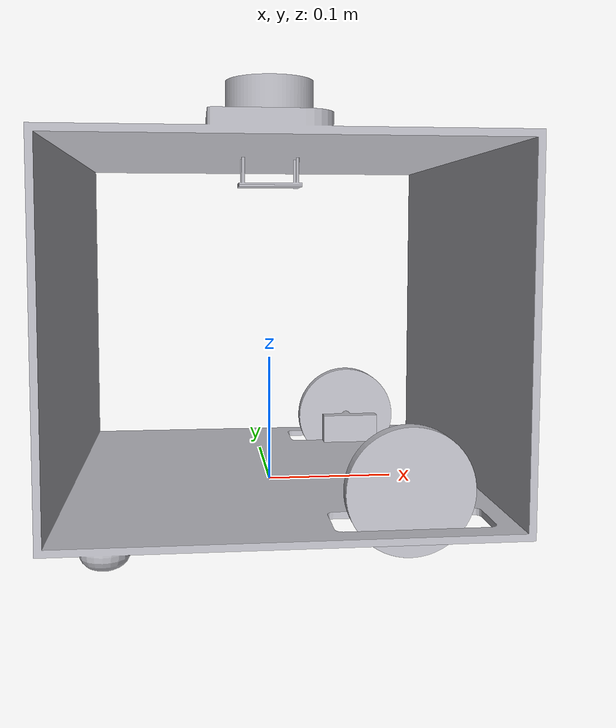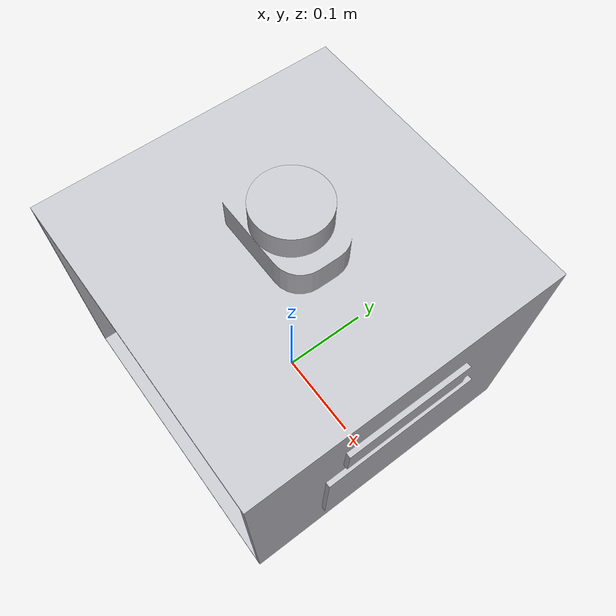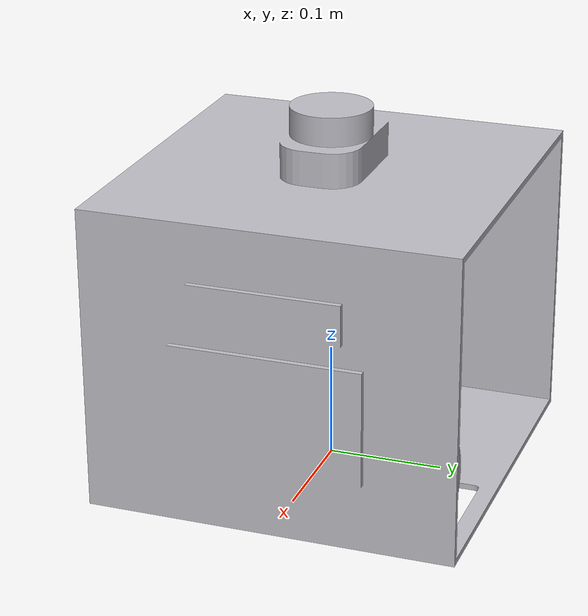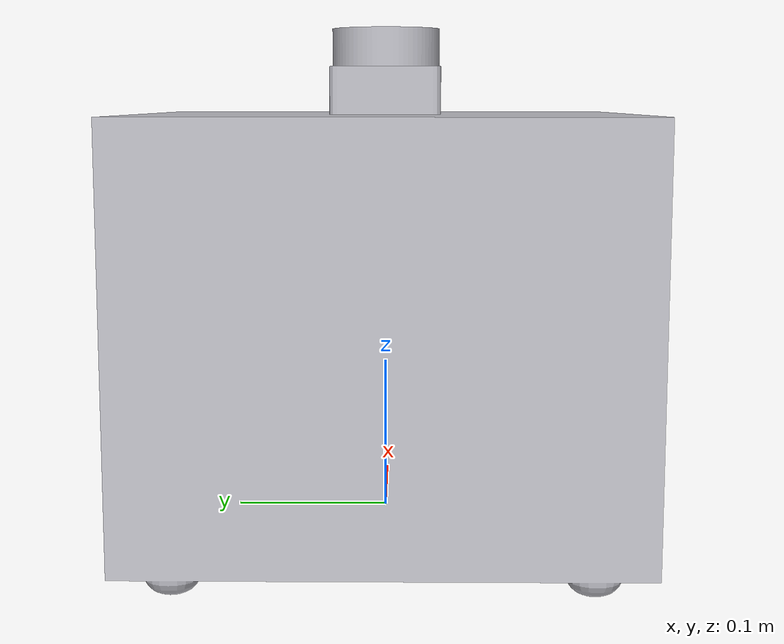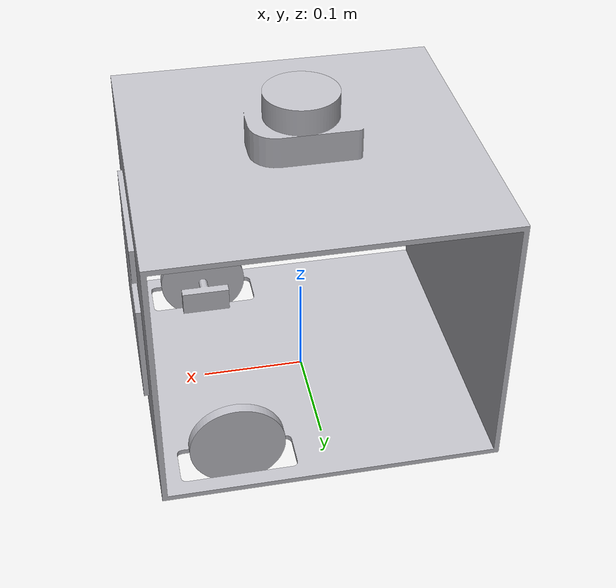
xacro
<?xml version="1.0" ?>
<robot name="bogie" xmlns:xacro="http://www.ros.org/wiki/xacro">

<xacro:include filename="$(find bogie_description)/urdf/materials.xacro" />
<xacro:include filename="$(find bogie_description)/urdf/bogie.trans" />
<xacro:include filename="$(find bogie_description)/urdf/bogie.gazebo" />

<link name="base_footprint"/>

<link name="base_link">
  <inertial>
    <origin xyz="0.005202407448213372 -1.4376562405654244e-05 0.14560626998665338" rpy="0 0 0"/>
    <mass value="8.474865513397598"/>
    <inertia ixx="0.166062" iyy="0.228656" izz="0.18886" ixy="-1.6e-05" iyz="-1.9e-05" ixz="-0.002063"/>
  </inertial>
  <visual>
    <origin xyz="0 0 0" rpy="0 0 0"/>
    <geometry>
      <mesh filename="package://bogie_description/meshes/base_link.stl" scale="0.001 0.001 0.001"/>
    </geometry>
    <material name="silver"/>
  </visual>
  <collision>
    <origin xyz="0 0 0" rpy="0 0 0"/>
    <geometry>
      <mesh filename="package://bogie_description/meshes/base_link.stl" scale="0.001 0.001 0.001"/>
    </geometry>
  </collision>
</link>

<link name="right_wheel_1">
  <inertial>
    <origin xyz="-2.7755575615628914e-17 -0.0050000000000000044 0.0" rpy="0 0 0"/>
    <mass value="0.05916404364872977"/>
    <inertia ixx="3e-05" iyy="6e-05" izz="3e-05" ixy="0.0" iyz="-0.0" ixz="0.0"/>
  </inertial>
  <visual>
    <origin xyz="-0.085 0.12 -0.025" rpy="0 0 0"/>
    <geometry>
      <mesh filename="package://bogie_description/meshes/right_wheel_1.stl" scale="0.001 0.001 0.001"/>
    </geometry>
    <material name="silver"/>
  </visual>
  <collision>
    <origin xyz="-0.085 0.12 -0.025" rpy="0 0 0"/>
    <geometry>
      <mesh filename="package://bogie_description/meshes/right_wheel_1.stl" scale="0.001 0.001 0.001"/>
    </geometry>
  </collision>
</link>

<link name="left_wheel_1">
  <inertial>
    <origin xyz="-2.7755575615628914e-17 0.0050000000000000044 0.0" rpy="0 0 0"/>
    <mass value="0.05916404364872977"/>
    <inertia ixx="3e-05" iyy="6e-05" izz="3e-05" ixy="-0.0" iyz="0.0" ixz="0.0"/>
  </inertial>
  <visual>
    <origin xyz="-0.085 -0.12 -0.025" rpy="0 0 0"/>
    <geometry>
      <mesh filename="package://bogie_description/meshes/left_wheel_1.stl" scale="0.001 0.001 0.001"/>
    </geometry>
    <material name="silver"/>
  </visual>
  <collision>
    <origin xyz="-0.085 -0.12 -0.025" rpy="0 0 0"/>
    <geometry>
      <mesh filename="package://bogie_description/meshes/left_wheel_1.stl" scale="0.001 0.001 0.001"/>
    </geometry>
  </collision>
</link>

<link name="imu_link_1">
  <inertial>
    <origin xyz="0.0 1.6391277263445857e-10 -0.0007499964237212553" rpy="0 0 0"/>
    <mass value="0.014718749999999859"/>
    <inertia ixx="1e-06" iyy="3e-06" izz="4e-06" ixy="0.0" iyz="0.0" ixz="0.0"/>
  </inertial>
  <visual>
    <origin xyz="-0.0 -0.0 -0.2385" rpy="0 0 0"/>
    <geometry>
      <mesh filename="package://bogie_description/meshes/imu_link_1.stl" scale="0.001 0.001 0.001"/>
    </geometry>
    <material name="silver"/>
  </visual>
  <collision>
    <origin xyz="-0.0 -0.0 -0.2385" rpy="0 0 0"/>
    <geometry>
      <mesh filename="package://bogie_description/meshes/imu_link_1.stl" scale="0.001 0.001 0.001"/>
    </geometry>
  </collision>
</link>

<link name="base_laser_link_1">
  <inertial>
    <origin xyz="-5.9081868368592115e-18 -5.9081868368592115e-18 0.012500000000000067" rpy="0 0 0"/>
    <mass value="0.13277155952233866"/>
    <inertia ixx="4.8e-05" iyy="4.8e-05" izz="8.1e-05" ixy="-0.0" iyz="-0.0" ixz="-0.0"/>
  </inertial>
  <visual>
    <origin xyz="-0.0 -0.0 -0.295" rpy="0 0 0"/>
    <geometry>
      <mesh filename="package://bogie_description/meshes/base_laser_link_1.stl" scale="0.001 0.001 0.001"/>
    </geometry>
    <material name="silver"/>
  </visual>
  <collision>
    <origin xyz="-0.0 -0.0 -0.295" rpy="0 0 0"/>
    <geometry>
      <mesh filename="package://bogie_description/meshes/base_laser_link_1.stl" scale="0.001 0.001 0.001"/>
    </geometry>
  </collision>
</link>

<joint name="base_link_joint" type="fixed">
  <origin xyz="0.0 0.0 0.0" rpy="0 0 0"/>
  <parent link="base_footprint"/>
  <child link="base_link"/>
  <axis xyz="0.0 0.0 0.0"/>
</joint>

<joint name="Revolute 1" type="continuous">
  <origin xyz="0.085 -0.12 0.025" rpy="0 0 0"/>
  <parent link="base_link"/>
  <child link="right_wheel_1"/>
  <axis xyz="0.0 -1.0 0.0"/>
</joint>

<joint name="Revolute 2" type="continuous">
  <origin xyz="0.085 0.12 0.025" rpy="0 0 0"/>
  <parent link="base_link"/>
  <child link="left_wheel_1"/>
  <axis xyz="0.0 1.0 0.0"/>
</joint>

<joint name="Rigid 3" type="fixed">
  <origin xyz="0.0 0.0 0.2385" rpy="0 0 0"/>
  <parent link="base_link"/>
  <child link="imu_link_1"/>
</joint>

<joint name="Rigid 4" type="fixed">
  <origin xyz="0.0 0.0 0.295" rpy="0 0 0"/>
  <parent link="base_link"/>
  <child link="base_laser_link_1"/>
</joint>

</robot>

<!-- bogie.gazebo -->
<robot name="bogie" xmlns:xacro="http://www.ros.org/wiki/xacro" >

<xacro:property name="body_color" value="Gazebo/Silver" />

<gazebo>
  <plugin name="control" filename="libgazebo_ros_control.so"/>
</gazebo>
<gazebo reference="base_link">
  <material>${body_color}</material>
  <mu1>0.2</mu1>
  <mu2>0.2</mu2>
  <selfCollide>true</selfCollide>
  <gravity>true</gravity>
</gazebo>

<gazebo reference="right_wheel_1">
  <material>${body_color}</material>
  <mu1>0.2</mu1>
  <mu2>0.2</mu2>
  <selfCollide>true</selfCollide>
</gazebo>

<gazebo reference="left_wheel_1">
  <material>${body_color}</material>
  <mu1>0.2</mu1>
  <mu2>0.2</mu2>
  <selfCollide>true</selfCollide>
</gazebo>

<gazebo reference="imu_link_1">
  <material>${body_color}</material>
  <mu1>0.2</mu1>
  <mu2>0.2</mu2>
  <selfCollide>true</selfCollide>
</gazebo>

<gazebo reference="base_laser_link_1">
  <material>${body_color}</material>
  <mu1>0.2</mu1>
  <mu2>0.2</mu2>
  <selfCollide>true</selfCollide>
</gazebo>

</robot>
